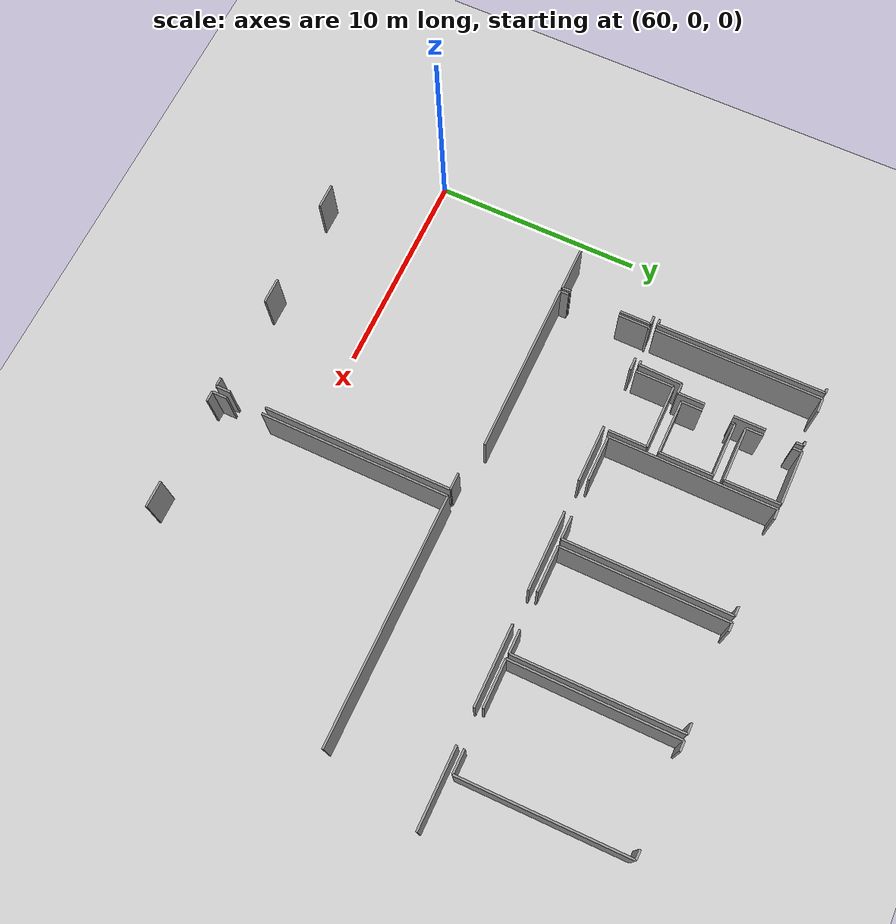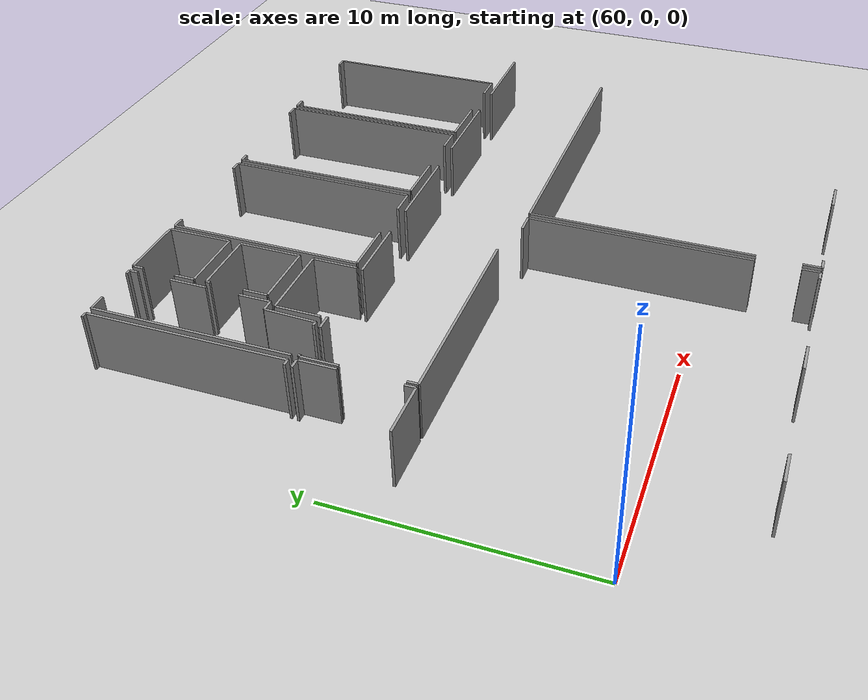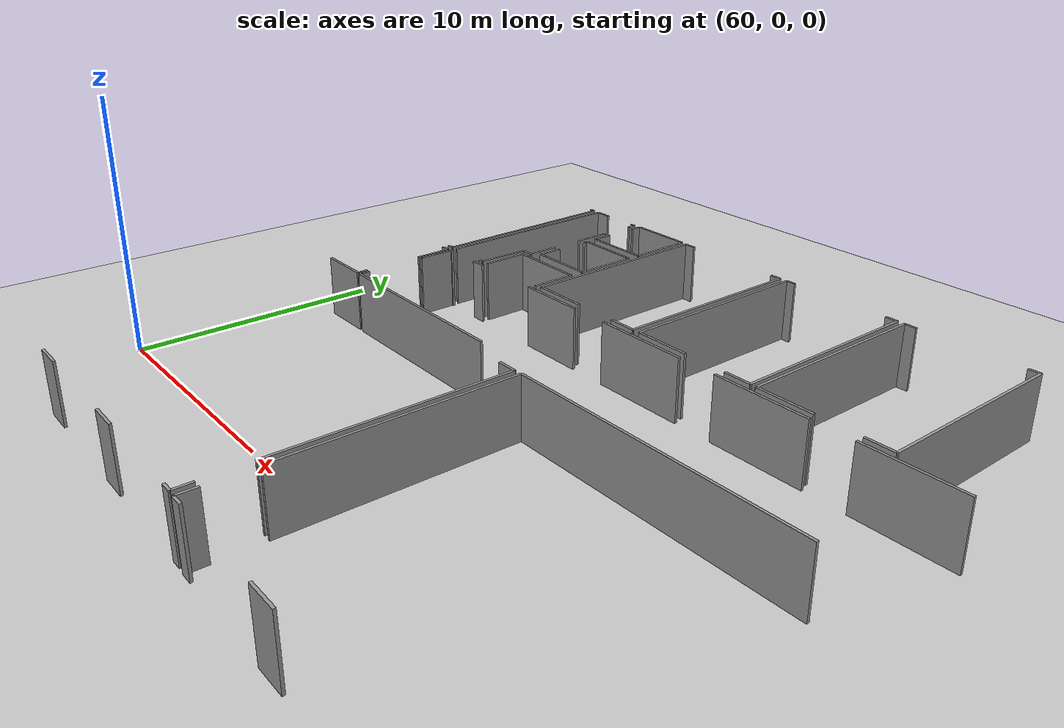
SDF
<sdf version="1.6">
 <world name="default">
  <model name="ground_plane">
   <static>1</static>
   <link name="link">
    <collision name="collision">
     <geometry><plane><normal>0 0 1</normal><size>100 100</size></plane></geometry>
     <surface><friction><ode><mu>100</mu><mu2>50</mu2></ode></friction></surface>
    </collision>
    <visual name="visual">
     <cast_shadows>0</cast_shadows>
     <geometry><plane><normal>0 0 1</normal><size>100 100</size></plane></geometry>
     <material>
      <script><uri>file://media/materials/scripts/gazebo.material</uri><name>Gazebo/Grey</name></script>
     </material>
    </visual>
   </link>
  </model>
  <model name="50037765_PLAN3">
   <static>1</static>
   <link name="Wall_315">
    <collision name="Wall_315_Collision">
     <geometry><box><size>2.18416587765 0.1 2.5</size></box></geometry>
     <pose>1.09208293883 0 1.25 0 0 0</pose>
    </collision>
    <visual name="Wall_315_Visual">
     <pose>1.09208293883 0 1.25 0 0 0</pose>
     <geometry><box><size>2.18416587765 0.1 2.5</size></box></geometry>
     <material>
      <script><uri>file://media/materials/scripts/gazebo.material</uri><name>Gazebo/Grey</name></script>
      <ambient>1 1 1 1</ambient>
     </material>
    </visual>
    <pose>199.42308841 -13.3366800323 0 0 0 3.14159265359</pose>
   </link>
   <link name="Wall_318">
    <collision name="Wall_318_Collision">
     <geometry><box><size>0.411008521373 0.1 2.5</size></box></geometry>
     <pose>0.205504260687 0 1.25 0 0 0</pose>
    </collision>
    <visual name="Wall_318_Visual">
     <pose>0.205504260687 0 1.25 0 0 0</pose>
     <geometry><box><size>0.411008521373 0.1 2.5</size></box></geometry>
     <material>
      <script><uri>file://media/materials/scripts/gazebo.material</uri><name>Gazebo/Grey</name></script>
      <ambient>1 1 1 1</ambient>
     </material>
    </visual>
    <pose>199.003946139 -8.95706269977 0 0 0 0.0</pose>
   </link>
   <link name="Wall_319">
    <collision name="Wall_319_Collision">
     <geometry><box><size>1.49671155056 0.1 2.5</size></box></geometry>
     <pose>0.74835577528 0 1.25 0 0 0</pose>
    </collision>
    <visual name="Wall_319_Visual">
     <pose>0.74835577528 0 1.25 0 0 0</pose>
     <geometry><box><size>1.49671155056 0.1 2.5</size></box></geometry>
     <material>
      <script><uri>file://media/materials/scripts/gazebo.material</uri><name>Gazebo/Grey</name></script>
      <ambient>1 1 1 1</ambient>
     </material>
    </visual>
    <pose>199.414954661 -8.95706269977 0 0 0 -1.57079632679</pose>
   </link>
   <link name="Wall_320">
    <collision name="Wall_320_Collision">
     <geometry><box><size>0.428649513435 0.1 2.5</size></box></geometry>
     <pose>0.214324756717 0 1.25 0 0 0</pose>
    </collision>
    <visual name="Wall_320_Visual">
     <pose>0.214324756717 0 1.25 0 0 0</pose>
     <geometry><box><size>0.428649513435 0.1 2.5</size></box></geometry>
     <material>
      <script><uri>file://media/materials/scripts/gazebo.material</uri><name>Gazebo/Grey</name></script>
      <ambient>1 1 1 1</ambient>
     </material>
    </visual>
    <pose>199.414954661 -12.9081076959 0 0 0 -1.5518198967</pose>
   </link>
   <link name="Wall_324">
    <collision name="Wall_324_Collision">
     <geometry><box><size>8.25651811983 0.1 2.5</size></box></geometry>
     <pose>4.12825905992 0 1.25 0 0 0</pose>
    </collision>
    <visual name="Wall_324_Visual">
     <pose>4.12825905992 0 1.25 0 0 0</pose>
     <geometry><box><size>8.25651811983 0.1 2.5</size></box></geometry>
     <material>
      <script><uri>file://media/materials/scripts/gazebo.material</uri><name>Gazebo/Grey</name></script>
      <ambient>1 1 1 1</ambient>
     </material>
    </visual>
    <pose>207.85524468 -13.3548284605 0 0 0 3.14159265359</pose>
   </link>
   <link name="Wall_325">
    <collision name="Wall_325_Collision">
     <geometry><box><size>0.424734223386 0.1 2.5</size></box></geometry>
     <pose>0.212367111693 0 1.25 0 0 0</pose>
    </collision>
    <visual name="Wall_325_Visual">
     <pose>0.212367111693 0 1.25 0 0 0</pose>
     <geometry><box><size>0.424734223386 0.1 2.5</size></box></geometry>
     <material>
      <script><uri>file://media/materials/scripts/gazebo.material</uri><name>Gazebo/Grey</name></script>
      <ambient>1 1 1 1</ambient>
     </material>
    </visual>
    <pose>199.59872656 -13.3548284605 0 0 0 1.57079632679</pose>
   </link>
   <link name="Wall_326">
    <collision name="Wall_326_Collision">
     <geometry><box><size>1.50548074907 0.1 2.5</size></box></geometry>
     <pose>0.752740374534 0 1.25 0 0 0</pose>
    </collision>
    <visual name="Wall_326_Visual">
     <pose>0.752740374534 0 1.25 0 0 0</pose>
     <geometry><box><size>1.50548074907 0.1 2.5</size></box></geometry>
     <material>
      <script><uri>file://media/materials/scripts/gazebo.material</uri><name>Gazebo/Grey</name></script>
      <ambient>1 1 1 1</ambient>
     </material>
    </visual>
    <pose>199.59872656 -10.4356258221 0 0 0 1.57079632679</pose>
   </link>
   <link name="Wall_327">
    <collision name="Wall_327_Collision">
     <geometry><box><size>0.0988758904231 0.1 2.5</size></box></geometry>
     <pose>0.0494379452116 0 1.25 0 0 0</pose>
    </collision>
    <visual name="Wall_327_Visual">
     <pose>0.0494379452116 0 1.25 0 0 0</pose>
     <geometry><box><size>0.0988758904231 0.1 2.5</size></box></geometry>
     <material>
      <script><uri>file://media/materials/scripts/gazebo.material</uri><name>Gazebo/Grey</name></script>
      <ambient>1 1 1 1</ambient>
     </material>
    </visual>
    <pose>199.59872656 -8.93014507304 0 0 0 0.0</pose>
   </link>
   <link name="Wall_328">
    <collision name="Wall_328_Collision">
     <geometry><box><size>0.611556278555 0.1 2.5</size></box></geometry>
     <pose>0.305778139278 0 1.25 0 0 0</pose>
    </collision>
    <visual name="Wall_328_Visual">
     <pose>0.305778139278 0 1.25 0 0 0</pose>
     <geometry><box><size>0.611556278555 0.1 2.5</size></box></geometry>
     <material>
      <script><uri>file://media/materials/scripts/gazebo.material</uri><name>Gazebo/Grey</name></script>
      <ambient>1 1 1 1</ambient>
     </material>
    </visual>
    <pose>201.259028144 -8.93014507304 0 0 0 0.0</pose>
   </link>
   <link name="Wall_329">
    <collision name="Wall_329_Collision">
     <geometry><box><size>2.76115372151 0.1 2.5</size></box></geometry>
     <pose>1.38057686075 0 1.25 0 0 0</pose>
    </collision>
    <visual name="Wall_329_Visual">
     <pose>1.38057686075 0 1.25 0 0 0</pose>
     <geometry><box><size>2.76115372151 0.1 2.5</size></box></geometry>
     <material>
      <script><uri>file://media/materials/scripts/gazebo.material</uri><name>Gazebo/Grey</name></script>
      <ambient>1 1 1 1</ambient>
     </material>
    </visual>
    <pose>204.877529882 -8.93014507304 0 0 0 0.0</pose>
   </link>
   <link name="Wall_330">
    <collision name="Wall_330_Collision">
     <geometry><box><size>3.80964484746 0.1 2.5</size></box></geometry>
     <pose>1.90482242373 0 1.25 0 0 0</pose>
    </collision>
    <visual name="Wall_330_Visual">
     <pose>1.90482242373 0 1.25 0 0 0</pose>
     <geometry><box><size>3.80964484746 0.1 2.5</size></box></geometry>
     <material>
      <script><uri>file://media/materials/scripts/gazebo.material</uri><name>Gazebo/Grey</name></script>
      <ambient>1 1 1 1</ambient>
     </material>
    </visual>
    <pose>209.192229728 -8.93014507304 0 0 0 0.0</pose>
   </link>
   <link name="Wall_331">
    <collision name="Wall_331_Collision">
     <geometry><box><size>3.82896250214 0.1 2.5</size></box></geometry>
     <pose>1.91448125107 0 1.25 0 0 0</pose>
    </collision>
    <visual name="Wall_331_Visual">
     <pose>1.91448125107 0 1.25 0 0 0</pose>
     <geometry><box><size>3.82896250214 0.1 2.5</size></box></geometry>
     <material>
      <script><uri>file://media/materials/scripts/gazebo.material</uri><name>Gazebo/Grey</name></script>
      <ambient>1 1 1 1</ambient>
     </material>
    </visual>
    <pose>214.594310188 -8.93014507304 0 0 0 0.0</pose>
   </link>
   <link name="Wall_332">
    <collision name="Wall_332_Collision">
     <geometry><box><size>3.74076215773 0.1 2.5</size></box></geometry>
     <pose>1.87038107887 0 1.25 0 0 0</pose>
    </collision>
    <visual name="Wall_332_Visual">
     <pose>1.87038107887 0 1.25 0 0 0</pose>
     <geometry><box><size>3.74076215773 0.1 2.5</size></box></geometry>
     <material>
      <script><uri>file://media/materials/scripts/gazebo.material</uri><name>Gazebo/Grey</name></script>
      <ambient>1 1 1 1</ambient>
     </material>
    </visual>
    <pose>220.078744861 -8.93014507304 0 0 0 0.0</pose>
   </link>
   <link name="Wall_338">
    <collision name="Wall_338_Collision">
     <geometry><box><size>0.274005680916 0.1 2.5</size></box></geometry>
     <pose>0.137002840458 0 1.25 0 0 0</pose>
    </collision>
    <visual name="Wall_338_Visual">
     <pose>0.137002840458 0 1.25 0 0 0</pose>
     <geometry><box><size>0.274005680916 0.1 2.5</size></box></geometry>
     <material>
      <script><uri>file://media/materials/scripts/gazebo.material</uri><name>Gazebo/Grey</name></script>
      <ambient>1 1 1 1</ambient>
     </material>
    </visual>
    <pose>199.305911584 -8.66107047767 0 0 0 3.14159265359</pose>
   </link>
   <link name="Wall_344">
    <collision name="Wall_344_Collision">
     <geometry><box><size>0.214781818528 0.1 2.5</size></box></geometry>
     <pose>0.107390909264 0 1.25 0 0 0</pose>
    </collision>
    <visual name="Wall_344_Visual">
     <pose>0.107390909264 0 1.25 0 0 0</pose>
     <geometry><box><size>0.214781818528 0.1 2.5</size></box></geometry>
     <material>
      <script><uri>file://media/materials/scripts/gazebo.material</uri><name>Gazebo/Grey</name></script>
      <ambient>1 1 1 1</ambient>
     </material>
    </visual>
    <pose>199.050461018 -0.591221905204 0 0 0 0.0</pose>
   </link>
   <link name="Wall_345">
    <collision name="Wall_345_Collision">
     <geometry><box><size>8.06995104876 0.1 2.5</size></box></geometry>
     <pose>4.03497552438 0 1.25 0 0 0</pose>
    </collision>
    <visual name="Wall_345_Visual">
     <pose>4.03497552438 0 1.25 0 0 0</pose>
     <geometry><box><size>8.06995104876 0.1 2.5</size></box></geometry>
     <material>
      <script><uri>file://media/materials/scripts/gazebo.material</uri><name>Gazebo/Grey</name></script>
      <ambient>1 1 1 1</ambient>
     </material>
    </visual>
    <pose>199.265242837 -0.591221905204 0 0 0 -1.56575677716</pose>
   </link>
   <link name="Wall_356">
    <collision name="Wall_356_Collision">
     <geometry><box><size>0.430834535391 0.1 2.5</size></box></geometry>
     <pose>0.215417267696 0 1.25 0 0 0</pose>
    </collision>
    <visual name="Wall_356_Visual">
     <pose>0.215417267696 0 1.25 0 0 0</pose>
     <geometry><box><size>0.430834535391 0.1 2.5</size></box></geometry>
     <material>
      <script><uri>file://media/materials/scripts/gazebo.material</uri><name>Gazebo/Grey</name></script>
      <ambient>1 1 1 1</ambient>
     </material>
    </visual>
    <pose>210.356880961 -25.4025888199 0 0 0 3.14159265359</pose>
   </link>
   <link name="Wall_357">
    <collision name="Wall_357_Collision">
     <geometry><box><size>1.21370790944 0.1 2.5</size></box></geometry>
     <pose>0.606853954718 0 1.25 0 0 0</pose>
    </collision>
    <visual name="Wall_357_Visual">
     <pose>0.606853954718 0 1.25 0 0 0</pose>
     <geometry><box><size>1.21370790944 0.1 2.5</size></box></geometry>
     <material>
      <script><uri>file://media/materials/scripts/gazebo.material</uri><name>Gazebo/Grey</name></script>
      <ambient>1 1 1 1</ambient>
     </material>
    </visual>
    <pose>205.759787506 -25.4025888199 0 0 0 3.14159265359</pose>
   </link>
   <link name="Wall_358">
    <collision name="Wall_358_Collision">
     <geometry><box><size>1.21345372977 0.1 2.5</size></box></geometry>
     <pose>0.606726864884 0 1.25 0 0 0</pose>
    </collision>
    <visual name="Wall_358_Visual">
     <pose>0.606726864884 0 1.25 0 0 0</pose>
     <geometry><box><size>1.21345372977 0.1 2.5</size></box></geometry>
     <material>
      <script><uri>file://media/materials/scripts/gazebo.material</uri><name>Gazebo/Grey</name></script>
      <ambient>1 1 1 1</ambient>
     </material>
    </visual>
    <pose>200.322630251 -25.4025888199 0 0 0 3.14159265359</pose>
   </link>
   <link name="Wall_363">
    <collision name="Wall_363_Collision">
     <geometry><box><size>0.808799700068 0.1 2.5</size></box></geometry>
     <pose>0.404399850034 0 1.25 0 0 0</pose>
    </collision>
    <visual name="Wall_363_Visual">
     <pose>0.404399850034 0 1.25 0 0 0</pose>
     <geometry><box><size>0.808799700068 0.1 2.5</size></box></geometry>
     <material>
      <script><uri>file://media/materials/scripts/gazebo.material</uri><name>Gazebo/Grey</name></script>
      <ambient>1 1 1 1</ambient>
     </material>
    </visual>
    <pose>209.539439153 -13.8364480933 0 0 0 0.0</pose>
   </link>
   <link name="Wall_364">
    <collision name="Wall_364_Collision">
     <geometry><box><size>9.09043077099 0.1 2.5</size></box></geometry>
     <pose>4.5452153855 0 1.25 0 0 0</pose>
    </collision>
    <visual name="Wall_364_Visual">
     <pose>4.5452153855 0 1.25 0 0 0</pose>
     <geometry><box><size>9.09043077099 0.1 2.5</size></box></geometry>
     <material>
      <script><uri>file://media/materials/scripts/gazebo.material</uri><name>Gazebo/Grey</name></script>
      <ambient>1 1 1 1</ambient>
     </material>
    </visual>
    <pose>210.348238853 -13.8364480933 0 0 0 -1.57079632679</pose>
   </link>
   <link name="Wall_365">
    <collision name="Wall_365_Collision">
     <geometry><box><size>0.692439344393 0.1 2.5</size></box></geometry>
     <pose>0.346219672197 0 1.25 0 0 0</pose>
    </collision>
    <visual name="Wall_365_Visual">
     <pose>0.346219672197 0 1.25 0 0 0</pose>
     <geometry><box><size>0.692439344393 0.1 2.5</size></box></geometry>
     <material>
      <script><uri>file://media/materials/scripts/gazebo.material</uri><name>Gazebo/Grey</name></script>
      <ambient>1 1 1 1</ambient>
     </material>
    </visual>
    <pose>210.348238853 -24.7102034073 0 0 0 -1.55831533027</pose>
   </link>
   <link name="Wall_366">
    <collision name="Wall_366_Collision">
     <geometry><box><size>0.200801936849 0.1 2.5</size></box></geometry>
     <pose>0.100400968425 0 1.25 0 0 0</pose>
    </collision>
    <visual name="Wall_366_Visual">
     <pose>0.100400968425 0 1.25 0 0 0</pose>
     <geometry><box><size>0.200801936849 0.1 2.5</size></box></geometry>
     <material>
      <script><uri>file://media/materials/scripts/gazebo.material</uri><name>Gazebo/Grey</name></script>
      <ambient>1 1 1 1</ambient>
     </material>
    </visual>
    <pose>201.478893556 -8.65733403656 0 0 0 3.14159265359</pose>
   </link>
   <link name="Wall_367">
    <collision name="Wall_367_Collision">
     <geometry><box><size>8.05347940192 0.1 2.5</size></box></geometry>
     <pose>4.02673970096 0 1.25 0 0 0</pose>
    </collision>
    <visual name="Wall_367_Visual">
     <pose>4.02673970096 0 1.25 0 0 0</pose>
     <geometry><box><size>8.05347940192 0.1 2.5</size></box></geometry>
     <material>
      <script><uri>file://media/materials/scripts/gazebo.material</uri><name>Gazebo/Grey</name></script>
      <ambient>1 1 1 1</ambient>
     </material>
    </visual>
    <pose>199.582459061 -8.65733403656 0 0 0 1.57079632679</pose>
   </link>
   <link name="Wall_368">
    <collision name="Wall_368_Collision">
     <geometry><box><size>0.69391049063 0.1 2.5</size></box></geometry>
     <pose>0.346955245315 0 1.25 0 0 0</pose>
    </collision>
    <visual name="Wall_368_Visual">
     <pose>0.346955245315 0 1.25 0 0 0</pose>
     <geometry><box><size>0.69391049063 0.1 2.5</size></box></geometry>
     <material>
      <script><uri>file://media/materials/scripts/gazebo.material</uri><name>Gazebo/Grey</name></script>
      <ambient>1 1 1 1</ambient>
     </material>
    </visual>
    <pose>199.582459061 -0.603854634648 0 0 0 0.0</pose>
   </link>
   <link name="Wall_369">
    <collision name="Wall_369_Collision">
     <geometry><box><size>0.210206584524 0.1 2.5</size></box></geometry>
     <pose>0.105103292262 0 1.25 0 0 0</pose>
    </collision>
    <visual name="Wall_369_Visual">
     <pose>0.105103292262 0 1.25 0 0 0</pose>
     <geometry><box><size>0.210206584524 0.1 2.5</size></box></geometry>
     <material>
      <script><uri>file://media/materials/scripts/gazebo.material</uri><name>Gazebo/Grey</name></script>
      <ambient>1 1 1 1</ambient>
     </material>
    </visual>
    <pose>201.813393998 -0.603854634648 0 0 0 0.0</pose>
   </link>
   <link name="Wall_370">
    <collision name="Wall_370_Collision">
     <geometry><box><size>0.361265560561 0.1 2.5</size></box></geometry>
     <pose>0.180632780281 0 1.25 0 0 0</pose>
    </collision>
    <visual name="Wall_370_Visual">
     <pose>0.180632780281 0 1.25 0 0 0</pose>
     <geometry><box><size>0.361265560561 0.1 2.5</size></box></geometry>
     <material>
      <script><uri>file://media/materials/scripts/gazebo.material</uri><name>Gazebo/Grey</name></script>
      <ambient>1 1 1 1</ambient>
     </material>
    </visual>
    <pose>202.023600582 -0.603854634648 0 0 0 -1.57079632679</pose>
   </link>
   <link name="Wall_371">
    <collision name="Wall_371_Collision">
     <geometry><box><size>1.51933354091 0.1 2.5</size></box></geometry>
     <pose>0.759666770457 0 1.25 0 0 0</pose>
    </collision>
    <visual name="Wall_371_Visual">
     <pose>0.759666770457 0 1.25 0 0 0</pose>
     <geometry><box><size>1.51933354091 0.1 2.5</size></box></geometry>
     <material>
      <script><uri>file://media/materials/scripts/gazebo.material</uri><name>Gazebo/Grey</name></script>
      <ambient>1 1 1 1</ambient>
     </material>
    </visual>
    <pose>202.023600582 -2.37932502589 0 0 0 -1.57079632679</pose>
   </link>
   <link name="Wall_372">
    <collision name="Wall_372_Collision">
     <geometry><box><size>1.29667215271 0.1 2.5</size></box></geometry>
     <pose>0.648336076356 0 1.25 0 0 0</pose>
    </collision>
    <visual name="Wall_372_Visual">
     <pose>0.648336076356 0 1.25 0 0 0</pose>
     <geometry><box><size>1.29667215271 0.1 2.5</size></box></geometry>
     <material>
      <script><uri>file://media/materials/scripts/gazebo.material</uri><name>Gazebo/Grey</name></script>
      <ambient>1 1 1 1</ambient>
     </material>
    </visual>
    <pose>202.023600582 -5.27084749855 0 0 0 -1.57079632679</pose>
   </link>
   <link name="Wall_373">
    <collision name="Wall_373_Collision">
     <geometry><box><size>0.479637031436 0.1 2.5</size></box></geometry>
     <pose>0.239818515718 0 1.25 0 0 0</pose>
    </collision>
    <visual name="Wall_373_Visual">
     <pose>0.239818515718 0 1.25 0 0 0</pose>
     <geometry><box><size>0.479637031436 0.1 2.5</size></box></geometry>
     <material>
      <script><uri>file://media/materials/scripts/gazebo.material</uri><name>Gazebo/Grey</name></script>
      <ambient>1 1 1 1</ambient>
     </material>
    </visual>
    <pose>202.023600582 -6.56751965127 0 0 0 3.14159265359</pose>
   </link>
   <link name="Wall_374">
    <collision name="Wall_374_Collision">
     <geometry><box><size>2.09082717344 0.1 2.5</size></box></geometry>
     <pose>1.04541358672 0 1.25 0 0 0</pose>
    </collision>
    <visual name="Wall_374_Visual">
     <pose>1.04541358672 0 1.25 0 0 0</pose>
     <geometry><box><size>2.09082717344 0.1 2.5</size></box></geometry>
     <material>
      <script><uri>file://media/materials/scripts/gazebo.material</uri><name>Gazebo/Grey</name></script>
      <ambient>1 1 1 1</ambient>
     </material>
    </visual>
    <pose>201.543963551 -6.56751965127 0 0 0 -1.60192300438</pose>
   </link>
   <link name="Wall_375">
    <collision name="Wall_375_Collision">
     <geometry><box><size>2.67015740076 0.1 2.5</size></box></geometry>
     <pose>1.33507870038 0 1.25 0 0 0</pose>
    </collision>
    <visual name="Wall_375_Visual">
     <pose>1.33507870038 0 1.25 0 0 0</pose>
     <geometry><box><size>2.67015740076 0.1 2.5</size></box></geometry>
     <material>
      <script><uri>file://media/materials/scripts/gazebo.material</uri><name>Gazebo/Grey</name></script>
      <ambient>1 1 1 1</ambient>
     </material>
    </visual>
    <pose>204.983268623 -3.20492600194 0 0 0 3.14159265359</pose>
   </link>
   <link name="Wall_376">
    <collision name="Wall_376_Collision">
     <geometry><box><size>0.824152151949 0.1 2.5</size></box></geometry>
     <pose>0.412076075974 0 1.25 0 0 0</pose>
    </collision>
    <visual name="Wall_376_Visual">
     <pose>0.412076075974 0 1.25 0 0 0</pose>
     <geometry><box><size>0.824152151949 0.1 2.5</size></box></geometry>
     <material>
      <script><uri>file://media/materials/scripts/gazebo.material</uri><name>Gazebo/Grey</name></script>
      <ambient>1 1 1 1</ambient>
     </material>
    </visual>
    <pose>202.313111223 -3.20492600194 0 0 0 1.57079632679</pose>
   </link>
   <link name="Wall_377">
    <collision name="Wall_377_Collision">
     <geometry><box><size>0.439552897966 0.1 2.5</size></box></geometry>
     <pose>0.219776448983 0 1.25 0 0 0</pose>
    </collision>
    <visual name="Wall_377_Visual">
     <pose>0.219776448983 0 1.25 0 0 0</pose>
     <geometry><box><size>0.439552897966 0.1 2.5</size></box></geometry>
     <material>
      <script><uri>file://media/materials/scripts/gazebo.material</uri><name>Gazebo/Grey</name></script>
      <ambient>1 1 1 1</ambient>
     </material>
    </visual>
    <pose>202.313111223 -1.00332339914 0 0 0 1.57079632679</pose>
   </link>
   <link name="Wall_378">
    <collision name="Wall_378_Collision">
     <geometry><box><size>2.65363572241 0.1 2.5</size></box></geometry>
     <pose>1.32681786121 0 1.25 0 0 0</pose>
    </collision>
    <visual name="Wall_378_Visual">
     <pose>1.32681786121 0 1.25 0 0 0</pose>
     <geometry><box><size>2.65363572241 0.1 2.5</size></box></geometry>
     <material>
      <script><uri>file://media/materials/scripts/gazebo.material</uri><name>Gazebo/Grey</name></script>
      <ambient>1 1 1 1</ambient>
     </material>
    </visual>
    <pose>202.313111223 -0.563770501179 0 0 0 0.0</pose>
   </link>
   <link name="Wall_379">
    <collision name="Wall_379_Collision">
     <geometry><box><size>2.64120717572 0.1 2.5</size></box></geometry>
     <pose>1.32060358786 0 1.25 0 0 0</pose>
    </collision>
    <visual name="Wall_379_Visual">
     <pose>1.32060358786 0 1.25 0 0 0</pose>
     <geometry><box><size>2.64120717572 0.1 2.5</size></box></geometry>
     <material>
      <script><uri>file://media/materials/scripts/gazebo.material</uri><name>Gazebo/Grey</name></script>
      <ambient>1 1 1 1</ambient>
     </material>
    </visual>
    <pose>204.966746945 -0.563770501179 0 0 0 -1.56454093485</pose>
   </link>
   <link name="Wall_380">
    <collision name="Wall_380_Collision">
     <geometry><box><size>2.63406388806 0.1 2.5</size></box></geometry>
     <pose>1.31703194403 0 1.25 0 0 0</pose>
    </collision>
    <visual name="Wall_380_Visual">
     <pose>1.31703194403 0 1.25 0 0 0</pose>
     <geometry><box><size>2.63406388806 0.1 2.5</size></box></geometry>
     <material>
      <script><uri>file://media/materials/scripts/gazebo.material</uri><name>Gazebo/Grey</name></script>
      <ambient>1 1 1 1</ambient>
     </material>
    </visual>
    <pose>204.972847257 -6.26801974976 0 0 0 3.14159265359</pose>
   </link>
   <link name="Wall_381">
    <collision name="Wall_381_Collision">
     <geometry><box><size>0.997095997306 0.1 2.5</size></box></geometry>
     <pose>0.498547998653 0 1.25 0 0 0</pose>
    </collision>
    <visual name="Wall_381_Visual">
     <pose>0.498547998653 0 1.25 0 0 0</pose>
     <geometry><box><size>0.997095997306 0.1 2.5</size></box></geometry>
     <material>
      <script><uri>file://media/materials/scripts/gazebo.material</uri><name>Gazebo/Grey</name></script>
      <ambient>1 1 1 1</ambient>
     </material>
    </visual>
    <pose>202.338783369 -6.26801974976 0 0 0 1.57079632679</pose>
   </link>
   <link name="Wall_382">
    <collision name="Wall_382_Collision">
     <geometry><box><size>0.164276318716 0.1 2.5</size></box></geometry>
     <pose>0.0821381593579 0 1.25 0 0 0</pose>
    </collision>
    <visual name="Wall_382_Visual">
     <pose>0.0821381593579 0 1.25 0 0 0</pose>
     <geometry><box><size>0.164276318716 0.1 2.5</size></box></geometry>
     <material>
      <script><uri>file://media/materials/scripts/gazebo.material</uri><name>Gazebo/Grey</name></script>
      <ambient>1 1 1 1</ambient>
     </material>
    </visual>
    <pose>202.338783369 -3.87690078732 0 0 0 1.57079632679</pose>
   </link>
   <link name="Wall_383">
    <collision name="Wall_383_Collision">
     <geometry><box><size>2.62593013872 0.1 2.5</size></box></geometry>
     <pose>1.31296506936 0 1.25 0 0 0</pose>
    </collision>
    <visual name="Wall_383_Visual">
     <pose>1.31296506936 0 1.25 0 0 0</pose>
     <geometry><box><size>2.62593013872 0.1 2.5</size></box></geometry>
     <material>
      <script><uri>file://media/materials/scripts/gazebo.material</uri><name>Gazebo/Grey</name></script>
      <ambient>1 1 1 1</ambient>
     </material>
    </visual>
    <pose>202.338783369 -3.71262446861 0 0 0 0.0</pose>
   </link>
   <link name="Wall_384">
    <collision name="Wall_384_Collision">
     <geometry><box><size>2.55540822587 0.1 2.5</size></box></geometry>
     <pose>1.27770411293 0 1.25 0 0 0</pose>
    </collision>
    <visual name="Wall_384_Visual">
     <pose>1.27770411293 0 1.25 0 0 0</pose>
     <geometry><box><size>2.55540822587 0.1 2.5</size></box></geometry>
     <material>
      <script><uri>file://media/materials/scripts/gazebo.material</uri><name>Gazebo/Grey</name></script>
      <ambient>1 1 1 1</ambient>
     </material>
    </visual>
    <pose>204.964713508 -3.71262446861 0 0 0 -1.56761336644</pose>
   </link>
   <link name="Wall_385">
    <collision name="Wall_385_Collision">
     <geometry><box><size>1.83726146827 0.1 2.5</size></box></geometry>
     <pose>0.918630734134 0 1.25 0 0 0</pose>
    </collision>
    <visual name="Wall_385_Visual">
     <pose>0.918630734134 0 1.25 0 0 0</pose>
     <geometry><box><size>1.83726146827 0.1 2.5</size></box></geometry>
     <material>
      <script><uri>file://media/materials/scripts/gazebo.material</uri><name>Gazebo/Grey</name></script>
      <ambient>1 1 1 1</ambient>
     </material>
    </visual>
    <pose>201.829661496 -8.67904098012 0 0 0 1.57079632679</pose>
   </link>
   <link name="Wall_386">
    <collision name="Wall_386_Collision">
     <geometry><box><size>3.13708544885 0.1 2.5</size></box></geometry>
     <pose>1.56854272442 0 1.25 0 0 0</pose>
    </collision>
    <visual name="Wall_386_Visual">
     <pose>1.56854272442 0 1.25 0 0 0</pose>
     <geometry><box><size>3.13708544885 0.1 2.5</size></box></geometry>
     <material>
      <script><uri>file://media/materials/scripts/gazebo.material</uri><name>Gazebo/Grey</name></script>
      <ambient>1 1 1 1</ambient>
     </material>
    </visual>
    <pose>201.829661496 -6.84177951185 0 0 0 0.0</pose>
   </link>
   <link name="Wall_387">
    <collision name="Wall_387_Collision">
     <geometry><box><size>1.83726259355 0.1 2.5</size></box></geometry>
     <pose>0.918631296774 0 1.25 0 0 0</pose>
    </collision>
    <visual name="Wall_387_Visual">
     <pose>0.918631296774 0 1.25 0 0 0</pose>
     <geometry><box><size>1.83726259355 0.1 2.5</size></box></geometry>
     <material>
      <script><uri>file://media/materials/scripts/gazebo.material</uri><name>Gazebo/Grey</name></script>
      <ambient>1 1 1 1</ambient>
     </material>
    </visual>
    <pose>204.966746945 -6.84177951185 0 0 0 -1.57190310258</pose>
   </link>
   <link name="Wall_388">
    <collision name="Wall_388_Collision">
     <geometry><box><size>1.102631395 0.1 2.5</size></box></geometry>
     <pose>0.551315697501 0 1.25 0 0 0</pose>
    </collision>
    <visual name="Wall_388_Visual">
     <pose>0.551315697501 0 1.25 0 0 0</pose>
     <geometry><box><size>1.102631395 0.1 2.5</size></box></geometry>
     <material>
      <script><uri>file://media/materials/scripts/gazebo.material</uri><name>Gazebo/Grey</name></script>
      <ambient>1 1 1 1</ambient>
     </material>
    </visual>
    <pose>210.360693656 -8.56532099715 0 0 0 3.14159265359</pose>
   </link>
   <link name="Wall_389">
    <collision name="Wall_389_Collision">
     <geometry><box><size>2.206025329 0.1 2.5</size></box></geometry>
     <pose>1.1030126645 0 1.25 0 0 0</pose>
    </collision>
    <visual name="Wall_389_Visual">
     <pose>1.1030126645 0 1.25 0 0 0</pose>
     <geometry><box><size>2.206025329 0.1 2.5</size></box></geometry>
     <material>
      <script><uri>file://media/materials/scripts/gazebo.material</uri><name>Gazebo/Grey</name></script>
      <ambient>1 1 1 1</ambient>
     </material>
    </visual>
    <pose>207.437373307 -8.56532099715 0 0 0 3.14159265359</pose>
   </link>
   <link name="Wall_390">
    <collision name="Wall_390_Collision">
     <geometry><box><size>7.9614663625 0.1 2.5</size></box></geometry>
     <pose>3.98073318125 0 1.25 0 0 0</pose>
    </collision>
    <visual name="Wall_390_Visual">
     <pose>3.98073318125 0 1.25 0 0 0</pose>
     <geometry><box><size>7.9614663625 0.1 2.5</size></box></geometry>
     <material>
      <script><uri>file://media/materials/scripts/gazebo.material</uri><name>Gazebo/Grey</name></script>
      <ambient>1 1 1 1</ambient>
     </material>
    </visual>
    <pose>205.231347978 -8.56532099715 0 0 0 1.57079632679</pose>
   </link>
   <link name="Wall_391">
    <collision name="Wall_391_Collision">
     <geometry><box><size>0.49158347578 0.1 2.5</size></box></geometry>
     <pose>0.24579173789 0 1.25 0 0 0</pose>
    </collision>
    <visual name="Wall_391_Visual">
     <pose>0.24579173789 0 1.25 0 0 0</pose>
     <geometry><box><size>0.49158347578 0.1 2.5</size></box></geometry>
     <material>
      <script><uri>file://media/materials/scripts/gazebo.material</uri><name>Gazebo/Grey</name></script>
      <ambient>1 1 1 1</ambient>
     </material>
    </visual>
    <pose>205.231347978 -0.603854634648 0 0 0 0.0</pose>
   </link>
   <link name="Wall_392">
    <collision name="Wall_392_Collision">
     <geometry><box><size>0.450660549409 0.1 2.5</size></box></geometry>
     <pose>0.225330274705 0 1.25 0 0 0</pose>
    </collision>
    <visual name="Wall_392_Visual">
     <pose>0.225330274705 0 1.25 0 0 0</pose>
     <geometry><box><size>0.450660549409 0.1 2.5</size></box></geometry>
     <material>
      <script><uri>file://media/materials/scripts/gazebo.material</uri><name>Gazebo/Grey</name></script>
      <ambient>1 1 1 1</ambient>
     </material>
    </visual>
    <pose>209.928334043 -0.603854634648 0 0 0 0.0</pose>
   </link>
   <link name="Wall_393">
    <collision name="Wall_393_Collision">
     <geometry><box><size>7.96148739655 0.1 2.5</size></box></geometry>
     <pose>3.98074369828 0 1.25 0 0 0</pose>
    </collision>
    <visual name="Wall_393_Visual">
     <pose>3.98074369828 0 1.25 0 0 0</pose>
     <geometry><box><size>7.96148739655 0.1 2.5</size></box></geometry>
     <material>
      <script><uri>file://media/materials/scripts/gazebo.material</uri><name>Gazebo/Grey</name></script>
      <ambient>1 1 1 1</ambient>
     </material>
    </visual>
    <pose>210.378994592 -0.603854634648 0 0 0 -1.57309501185</pose>
   </link>
   <link name="Wall_394">
    <collision name="Wall_394_Collision">
     <geometry><box><size>1.09754780166 0.1 2.5</size></box></geometry>
     <pose>0.548773900832 0 1.25 0 0 0</pose>
    </collision>
    <visual name="Wall_394_Visual">
     <pose>0.548773900832 0 1.25 0 0 0</pose>
     <geometry><box><size>1.09754780166 0.1 2.5</size></box></geometry>
     <material>
      <script><uri>file://media/materials/scripts/gazebo.material</uri><name>Gazebo/Grey</name></script>
      <ambient>1 1 1 1</ambient>
     </material>
    </visual>
    <pose>215.782091772 -8.55266284974 0 0 0 3.14159265359</pose>
   </link>
   <link name="Wall_395">
    <collision name="Wall_395_Collision">
     <geometry><box><size>2.21009220367 0.1 2.5</size></box></geometry>
     <pose>1.10504610184 0 1.25 0 0 0</pose>
    </collision>
    <visual name="Wall_395_Visual">
     <pose>1.10504610184 0 1.25 0 0 0</pose>
     <geometry><box><size>2.21009220367 0.1 2.5</size></box></geometry>
     <material>
      <script><uri>file://media/materials/scripts/gazebo.material</uri><name>Gazebo/Grey</name></script>
      <ambient>1 1 1 1</ambient>
     </material>
    </visual>
    <pose>212.909098997 -8.55266284974 0 0 0 3.14159265359</pose>
   </link>
   <link name="Wall_396">
    <collision name="Wall_396_Collision">
     <geometry><box><size>7.96309311237 0.1 2.5</size></box></geometry>
     <pose>3.98154655618 0 1.25 0 0 0</pose>
    </collision>
    <visual name="Wall_396_Visual">
     <pose>3.98154655618 0 1.25 0 0 0</pose>
     <geometry><box><size>7.96309311237 0.1 2.5</size></box></geometry>
     <material>
      <script><uri>file://media/materials/scripts/gazebo.material</uri><name>Gazebo/Grey</name></script>
      <ambient>1 1 1 1</ambient>
     </material>
    </visual>
    <pose>210.699006793 -8.55266284974 0 0 0 1.57079632679</pose>
   </link>
   <link name="Wall_397">
    <collision name="Wall_397_Collision">
     <geometry><box><size>0.405162389035 0.1 2.5</size></box></geometry>
     <pose>0.202581194517 0 1.25 0 0 0</pose>
    </collision>
    <visual name="Wall_397_Visual">
     <pose>0.202581194517 0 1.25 0 0 0</pose>
     <geometry><box><size>0.405162389035 0.1 2.5</size></box></geometry>
     <material>
      <script><uri>file://media/materials/scripts/gazebo.material</uri><name>Gazebo/Grey</name></script>
      <ambient>1 1 1 1</ambient>
     </material>
    </visual>
    <pose>210.699006793 -0.589569737369 0 0 0 0.0</pose>
   </link>
   <link name="Wall_398">
    <collision name="Wall_398_Collision">
     <geometry><box><size>0.494379452116 0.1 2.5</size></box></geometry>
     <pose>0.247189726058 0 1.25 0 0 0</pose>
    </collision>
    <visual name="Wall_398_Visual">
     <pose>0.247189726058 0 1.25 0 0 0</pose>
     <geometry><box><size>0.494379452116 0.1 2.5</size></box></geometry>
     <material>
      <script><uri>file://media/materials/scripts/gazebo.material</uri><name>Gazebo/Grey</name></script>
      <ambient>1 1 1 1</ambient>
     </material>
    </visual>
    <pose>215.247043573 -0.589569737369 0 0 0 0.0</pose>
   </link>
   <link name="Wall_399">
    <collision name="Wall_399_Collision">
     <geometry><box><size>7.96319696248 0.1 2.5</size></box></geometry>
     <pose>3.98159848124 0 1.25 0 0 0</pose>
    </collision>
    <visual name="Wall_399_Visual">
     <pose>3.98159848124 0 1.25 0 0 0</pose>
     <geometry><box><size>7.96319696248 0.1 2.5</size></box></geometry>
     <material>
      <script><uri>file://media/materials/scripts/gazebo.material</uri><name>Gazebo/Grey</name></script>
      <ambient>1 1 1 1</ambient>
     </material>
    </visual>
    <pose>215.741423025 -0.589569737369 0 0 0 -1.56568921671</pose>
   </link>
   <link name="Wall_400">
    <collision name="Wall_400_Collision">
     <geometry><box><size>1.11610291735 0.1 2.5</size></box></geometry>
     <pose>0.558051458674 0 1.25 0 0 0</pose>
    </collision>
    <visual name="Wall_400_Visual">
     <pose>0.558051458674 0 1.25 0 0 0</pose>
     <geometry><box><size>1.11610291735 0.1 2.5</size></box></geometry>
     <material>
      <script><uri>file://media/materials/scripts/gazebo.material</uri><name>Gazebo/Grey</name></script>
      <ambient>1 1 1 1</ambient>
     </material>
    </visual>
    <pose>221.203489887 -8.57795372659 0 0 0 3.14159265359</pose>
   </link>
   <link name="Wall_401">
    <collision name="Wall_401_Collision">
     <geometry><box><size>2.26346993372 0.1 2.5</size></box></geometry>
     <pose>1.13173496686 0 1.25 0 0 0</pose>
    </collision>
    <visual name="Wall_401_Visual">
     <pose>1.13173496686 0 1.25 0 0 0</pose>
     <geometry><box><size>2.26346993372 0.1 2.5</size></box></geometry>
     <material>
      <script><uri>file://media/materials/scripts/gazebo.material</uri><name>Gazebo/Grey</name></script>
      <ambient>1 1 1 1</ambient>
     </material>
    </visual>
    <pose>218.30177481 -8.57795372659 0 0 0 3.14159265359</pose>
   </link>
   <link name="Wall_402">
    <collision name="Wall_402_Collision">
     <geometry><box><size>7.97595460351 0.1 2.5</size></box></geometry>
     <pose>3.98797730176 0 1.25 0 0 0</pose>
    </collision>
    <visual name="Wall_402_Visual">
     <pose>3.98797730176 0 1.25 0 0 0</pose>
     <geometry><box><size>7.97595460351 0.1 2.5</size></box></geometry>
     <material>
      <script><uri>file://media/materials/scripts/gazebo.material</uri><name>Gazebo/Grey</name></script>
      <ambient>1 1 1 1</ambient>
     </material>
    </visual>
    <pose>216.038304876 -8.57795372659 0 0 0 1.57079632679</pose>
   </link>
   <link name="Wall_403">
    <collision name="Wall_403_Collision">
     <geometry><box><size>0.490566757112 0.1 2.5</size></box></geometry>
     <pose>0.245283378556 0 1.25 0 0 0</pose>
    </collision>
    <visual name="Wall_403_Visual">
     <pose>0.245283378556 0 1.25 0 0 0</pose>
     <geometry><box><size>0.490566757112 0.1 2.5</size></box></geometry>
     <material>
      <script><uri>file://media/materials/scripts/gazebo.material</uri><name>Gazebo/Grey</name></script>
      <ambient>1 1 1 1</ambient>
     </material>
    </visual>
    <pose>216.038304876 -0.60199912308 0 0 0 0.0</pose>
   </link>
   <link name="Wall_404">
    <collision name="Wall_404_Collision">
     <geometry><box><size>0.449135471408 0.1 2.5</size></box></geometry>
     <pose>0.224567735704 0 1.25 0 0 0</pose>
    </collision>
    <visual name="Wall_404_Visual">
     <pose>0.224567735704 0 1.25 0 0 0</pose>
     <geometry><box><size>0.449135471408 0.1 2.5</size></box></geometry>
     <material>
      <script><uri>file://media/materials/scripts/gazebo.material</uri><name>Gazebo/Grey</name></script>
      <ambient>1 1 1 1</ambient>
     </material>
    </visual>
    <pose>220.695130553 -0.60199912308 0 0 0 0.0</pose>
   </link>
   <link name="Wall_405">
    <collision name="Wall_405_Collision">
     <geometry><box><size>7.97617447798 0.1 2.5</size></box></geometry>
     <pose>3.98808723899 0 1.25 0 0 0</pose>
    </collision>
    <visual name="Wall_405_Visual">
     <pose>3.98808723899 0 1.25 0 0 0</pose>
     <geometry><box><size>7.97617447798 0.1 2.5</size></box></geometry>
     <material>
      <script><uri>file://media/materials/scripts/gazebo.material</uri><name>Gazebo/Grey</name></script>
      <ambient>1 1 1 1</ambient>
     </material>
    </visual>
    <pose>221.144266024 -0.60199912308 0 0 0 -1.56337116242</pose>
   </link>
   <link name="Wall_462">
    <collision name="Wall_462_Collision">
     <geometry><box><size>1.25285157814 0.1 2.5</size></box></geometry>
     <pose>0.626425789069 0 1.25 0 0 0</pose>
    </collision>
    <visual name="Wall_462_Visual">
     <pose>0.626425789069 0 1.25 0 0 0</pose>
     <geometry><box><size>1.25285157814 0.1 2.5</size></box></geometry>
     <material>
      <script><uri>file://media/materials/scripts/gazebo.material</uri><name>Gazebo/Grey</name></script>
      <ambient>1 1 1 1</ambient>
     </material>
    </visual>
    <pose>216.565727685 -25.4323278409 0 0 0 3.14159265359</pose>
   </link>
   <link name="Wall_463">
    <collision name="Wall_463_Collision">
     <geometry><box><size>0.494379452116 0.1 2.5</size></box></geometry>
     <pose>0.247189726058 0 1.25 0 0 0</pose>
    </collision>
    <visual name="Wall_463_Visual">
     <pose>0.247189726058 0 1.25 0 0 0</pose>
     <geometry><box><size>0.494379452116 0.1 2.5</size></box></geometry>
     <material>
      <script><uri>file://media/materials/scripts/gazebo.material</uri><name>Gazebo/Grey</name></script>
      <ambient>1 1 1 1</ambient>
     </material>
    </visual>
    <pose>211.15907199 -25.4323278409 0 0 0 3.14159265359</pose>
   </link>
   <link name="Wall_464">
    <collision name="Wall_464_Collision">
     <geometry><box><size>0.733054159333 0.1 2.5</size></box></geometry>
     <pose>0.366527079666 0 1.25 0 0 0</pose>
    </collision>
    <visual name="Wall_464_Visual">
     <pose>0.366527079666 0 1.25 0 0 0</pose>
     <geometry><box><size>0.733054159333 0.1 2.5</size></box></geometry>
     <material>
      <script><uri>file://media/materials/scripts/gazebo.material</uri><name>Gazebo/Grey</name></script>
      <ambient>1 1 1 1</ambient>
     </material>
    </visual>
    <pose>210.664692538 -25.4323278409 0 0 0 1.57079632679</pose>
   </link>
   <link name="Wall_465">
    <collision name="Wall_465_Collision">
     <geometry><box><size>9.13191289263 0.1 2.5</size></box></geometry>
     <pose>4.56595644631 0 1.25 0 0 0</pose>
    </collision>
    <visual name="Wall_465_Visual">
     <pose>4.56595644631 0 1.25 0 0 0</pose>
     <geometry><box><size>9.13191289263 0.1 2.5</size></box></geometry>
     <material>
      <script><uri>file://media/materials/scripts/gazebo.material</uri><name>Gazebo/Grey</name></script>
      <ambient>1 1 1 1</ambient>
     </material>
    </visual>
    <pose>210.664692538 -22.9337417153 0 0 0 1.57079632679</pose>
   </link>
   <link name="Wall_466">
    <collision name="Wall_466_Collision">
     <geometry><box><size>11.8475684538 0.1 2.5</size></box></geometry>
     <pose>5.92378422688 0 1.25 0 0 0</pose>
    </collision>
    <visual name="Wall_466_Visual">
     <pose>5.92378422688 0 1.25 0 0 0</pose>
     <geometry><box><size>11.8475684538 0.1 2.5</size></box></geometry>
     <material>
      <script><uri>file://media/materials/scripts/gazebo.material</uri><name>Gazebo/Grey</name></script>
      <ambient>1 1 1 1</ambient>
     </material>
    </visual>
    <pose>210.664692538 -13.8018288227 0 0 0 0.0</pose>
   </link>
   <pose>-135.75 21.1468211655 0 0 0 0</pose>
  </model>
 </world>
</sdf>
